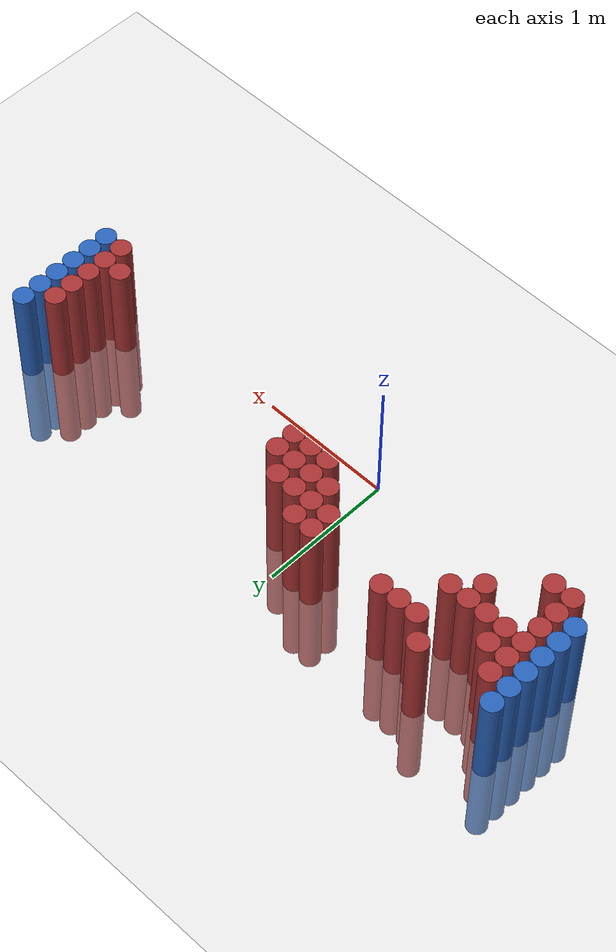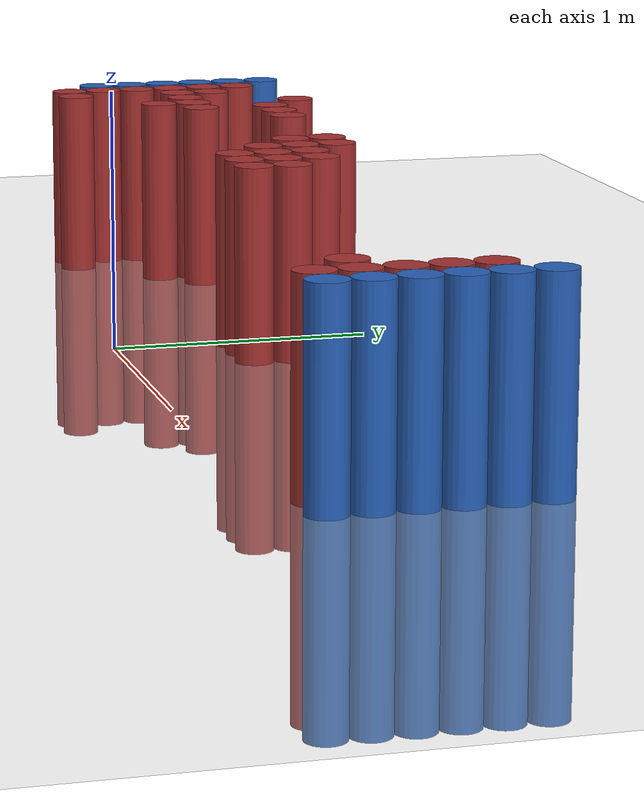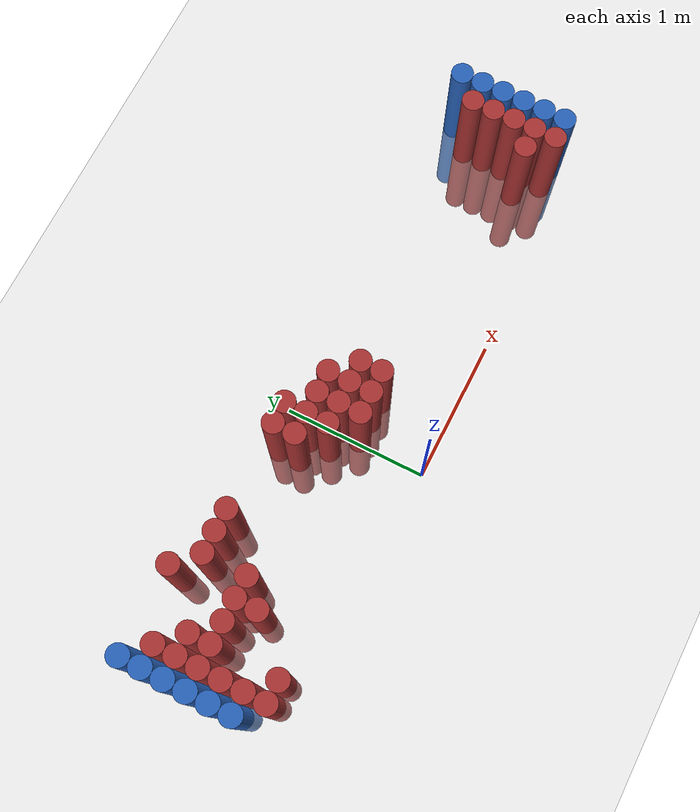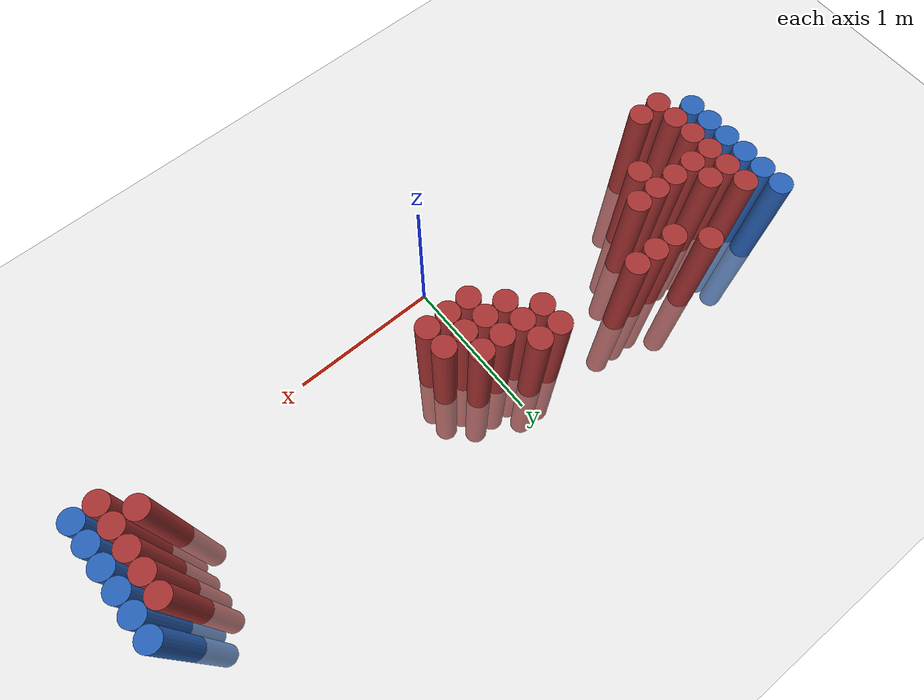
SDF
<sdf version="1.6">
 <world name="default">
  <model name="ground_plane">
   <static>1</static>
   <link name="link">
    <collision name="collision">
     <geometry><plane><normal>0 0 1</normal><size>100 100</size></plane></geometry>
     <surface><friction><ode><mu>100</mu><mu2>50</mu2></ode></friction></surface>
    </collision>
    <visual name="visual">
     <cast_shadows>0</cast_shadows>
     <geometry><plane><normal>0 0 1</normal><size>100 100</size></plane></geometry>
     <material>
      <script><uri>file://media/materials/scripts/gazebo.material</uri><name>Gazebo/Grey</name></script>
     </material>
    </visual>
   </link>
  </model>
  <model name="unit_cylinder_97">
   <static>1</static>
   <pose>-1.925000 0.325000 0.000000 0.000000 0.000000 0.000000</pose>
   <link name="link">
    <inertial>
     <mass>1</mass>
     <inertia><ixx>0.145833</ixx><ixy>0</ixy><ixz>0</ixz><iyy>0.145833</iyy><iyz>0</iyz><izz>0.125</izz></inertia>
    </inertial>
    <collision name="collision">
     <geometry><cylinder><radius>0.075000</radius><length>1.5</length></cylinder></geometry>
    </collision>
    <visual name="visual">
     <geometry><cylinder><radius>0.075000</radius><length>1.5</length></cylinder></geometry>
     <material>
      <ambient>0.152000 0.379000 0.720000 1</ambient>
      <diffuse>0.152000 0.379000 0.720000 1</diffuse>
     </material>
     <material>
      <script><name>Gazebo/Grey</name><uri>file://media/materials/scripts/gazebo.material</uri></script>
     </material>
    </visual>
   </link>
  </model>
  <model name="unit_cylinder_98">
   <static>1</static>
   <pose>-1.925000 0.475000 0.000000 0.000000 0.000000 0.000000</pose>
   <link name="link">
    <inertial>
     <mass>1</mass>
     <inertia><ixx>0.145833</ixx><ixy>0</ixy><ixz>0</ixz><iyy>0.145833</iyy><iyz>0</iyz><izz>0.125</izz></inertia>
    </inertial>
    <collision name="collision">
     <geometry><cylinder><radius>0.075000</radius><length>1.5</length></cylinder></geometry>
    </collision>
    <visual name="visual">
     <geometry><cylinder><radius>0.075000</radius><length>1.5</length></cylinder></geometry>
     <material>
      <ambient>0.152000 0.379000 0.720000 1</ambient>
      <diffuse>0.152000 0.379000 0.720000 1</diffuse>
     </material>
     <material>
      <script><name>Gazebo/Grey</name><uri>file://media/materials/scripts/gazebo.material</uri></script>
     </material>
    </visual>
   </link>
  </model>
  <model name="unit_cylinder_99">
   <static>1</static>
   <pose>-1.925000 0.625000 0.000000 0.000000 0.000000 0.000000</pose>
   <link name="link">
    <inertial>
     <mass>1</mass>
     <inertia><ixx>0.145833</ixx><ixy>0</ixy><ixz>0</ixz><iyy>0.145833</iyy><iyz>0</iyz><izz>0.125</izz></inertia>
    </inertial>
    <collision name="collision">
     <geometry><cylinder><radius>0.075000</radius><length>1.5</length></cylinder></geometry>
    </collision>
    <visual name="visual">
     <geometry><cylinder><radius>0.075000</radius><length>1.5</length></cylinder></geometry>
     <material>
      <ambient>0.152000 0.379000 0.720000 1</ambient>
      <diffuse>0.152000 0.379000 0.720000 1</diffuse>
     </material>
     <material>
      <script><name>Gazebo/Grey</name><uri>file://media/materials/scripts/gazebo.material</uri></script>
     </material>
    </visual>
   </link>
  </model>
  <model name="unit_cylinder_100">
   <static>1</static>
   <pose>-1.925000 0.775000 0.000000 0.000000 0.000000 0.000000</pose>
   <link name="link">
    <inertial>
     <mass>1</mass>
     <inertia><ixx>0.145833</ixx><ixy>0</ixy><ixz>0</ixz><iyy>0.145833</iyy><iyz>0</iyz><izz>0.125</izz></inertia>
    </inertial>
    <collision name="collision">
     <geometry><cylinder><radius>0.075000</radius><length>1.5</length></cylinder></geometry>
    </collision>
    <visual name="visual">
     <geometry><cylinder><radius>0.075000</radius><length>1.5</length></cylinder></geometry>
     <material>
      <ambient>0.152000 0.379000 0.720000 1</ambient>
      <diffuse>0.152000 0.379000 0.720000 1</diffuse>
     </material>
     <material>
      <script><name>Gazebo/Grey</name><uri>file://media/materials/scripts/gazebo.material</uri></script>
     </material>
    </visual>
   </link>
  </model>
  <model name="unit_cylinder_101">
   <static>1</static>
   <pose>-1.925000 0.925000 0.000000 0.000000 0.000000 0.000000</pose>
   <link name="link">
    <inertial>
     <mass>1</mass>
     <inertia><ixx>0.145833</ixx><ixy>0</ixy><ixz>0</ixz><iyy>0.145833</iyy><iyz>0</iyz><izz>0.125</izz></inertia>
    </inertial>
    <collision name="collision">
     <geometry><cylinder><radius>0.075000</radius><length>1.5</length></cylinder></geometry>
    </collision>
    <visual name="visual">
     <geometry><cylinder><radius>0.075000</radius><length>1.5</length></cylinder></geometry>
     <material>
      <ambient>0.152000 0.379000 0.720000 1</ambient>
      <diffuse>0.152000 0.379000 0.720000 1</diffuse>
     </material>
     <material>
      <script><name>Gazebo/Grey</name><uri>file://media/materials/scripts/gazebo.material</uri></script>
     </material>
    </visual>
   </link>
  </model>
  <model name="unit_cylinder_102">
   <static>1</static>
   <pose>-1.925000 1.075000 0.000000 0.000000 0.000000 0.000000</pose>
   <link name="link">
    <inertial>
     <mass>1</mass>
     <inertia><ixx>0.145833</ixx><ixy>0</ixy><ixz>0</ixz><iyy>0.145833</iyy><iyz>0</iyz><izz>0.125</izz></inertia>
    </inertial>
    <collision name="collision">
     <geometry><cylinder><radius>0.075000</radius><length>1.5</length></cylinder></geometry>
    </collision>
    <visual name="visual">
     <geometry><cylinder><radius>0.075000</radius><length>1.5</length></cylinder></geometry>
     <material>
      <ambient>0.152000 0.379000 0.720000 1</ambient>
      <diffuse>0.152000 0.379000 0.720000 1</diffuse>
     </material>
     <material>
      <script><name>Gazebo/Grey</name><uri>file://media/materials/scripts/gazebo.material</uri></script>
     </material>
    </visual>
   </link>
  </model>
  <model name="unit_cylinder_126">
   <static>1</static>
   <pose>-1.775000 0.175000 0.000000 0.000000 0.000000 0.000000</pose>
   <link name="link">
    <inertial>
     <mass>1</mass>
     <inertia><ixx>0.145833</ixx><ixy>0</ixy><ixz>0</ixz><iyy>0.145833</iyy><iyz>0</iyz><izz>0.125</izz></inertia>
    </inertial>
    <collision name="collision">
     <geometry><cylinder><radius>0.075000</radius><length>1.5</length></cylinder></geometry>
    </collision>
    <visual name="visual">
     <geometry><cylinder><radius>0.075000</radius><length>1.5</length></cylinder></geometry>
     <material>
      <ambient>0.648000 0.192000 0.192000 1</ambient>
      <diffuse>0.648000 0.192000 0.192000 1</diffuse>
     </material>
     <material>
      <script><name>Gazebo/Grey</name><uri>file://media/materials/scripts/gazebo.material</uri></script>
     </material>
    </visual>
   </link>
  </model>
  <model name="unit_cylinder_127">
   <static>1</static>
   <pose>-1.775000 0.325000 0.000000 0.000000 0.000000 0.000000</pose>
   <link name="link">
    <inertial>
     <mass>1</mass>
     <inertia><ixx>0.145833</ixx><ixy>0</ixy><ixz>0</ixz><iyy>0.145833</iyy><iyz>0</iyz><izz>0.125</izz></inertia>
    </inertial>
    <collision name="collision">
     <geometry><cylinder><radius>0.075000</radius><length>1.5</length></cylinder></geometry>
    </collision>
    <visual name="visual">
     <geometry><cylinder><radius>0.075000</radius><length>1.5</length></cylinder></geometry>
     <material>
      <ambient>0.648000 0.192000 0.192000 1</ambient>
      <diffuse>0.648000 0.192000 0.192000 1</diffuse>
     </material>
     <material>
      <script><name>Gazebo/Grey</name><uri>file://media/materials/scripts/gazebo.material</uri></script>
     </material>
    </visual>
   </link>
  </model>
  <model name="unit_cylinder_128">
   <static>1</static>
   <pose>-1.775000 0.475000 0.000000 0.000000 0.000000 0.000000</pose>
   <link name="link">
    <inertial>
     <mass>1</mass>
     <inertia><ixx>0.145833</ixx><ixy>0</ixy><ixz>0</ixz><iyy>0.145833</iyy><iyz>0</iyz><izz>0.125</izz></inertia>
    </inertial>
    <collision name="collision">
     <geometry><cylinder><radius>0.075000</radius><length>1.5</length></cylinder></geometry>
    </collision>
    <visual name="visual">
     <geometry><cylinder><radius>0.075000</radius><length>1.5</length></cylinder></geometry>
     <material>
      <ambient>0.648000 0.192000 0.192000 1</ambient>
      <diffuse>0.648000 0.192000 0.192000 1</diffuse>
     </material>
     <material>
      <script><name>Gazebo/Grey</name><uri>file://media/materials/scripts/gazebo.material</uri></script>
     </material>
    </visual>
   </link>
  </model>
  <model name="unit_cylinder_129">
   <static>1</static>
   <pose>-1.775000 0.625000 0.000000 0.000000 0.000000 0.000000</pose>
   <link name="link">
    <inertial>
     <mass>1</mass>
     <inertia><ixx>0.145833</ixx><ixy>0</ixy><ixz>0</ixz><iyy>0.145833</iyy><iyz>0</iyz><izz>0.125</izz></inertia>
    </inertial>
    <collision name="collision">
     <geometry><cylinder><radius>0.075000</radius><length>1.5</length></cylinder></geometry>
    </collision>
    <visual name="visual">
     <geometry><cylinder><radius>0.075000</radius><length>1.5</length></cylinder></geometry>
     <material>
      <ambient>0.648000 0.192000 0.192000 1</ambient>
      <diffuse>0.648000 0.192000 0.192000 1</diffuse>
     </material>
     <material>
      <script><name>Gazebo/Grey</name><uri>file://media/materials/scripts/gazebo.material</uri></script>
     </material>
    </visual>
   </link>
  </model>
  <model name="unit_cylinder_130">
   <static>1</static>
   <pose>-1.775000 0.775000 0.000000 0.000000 0.000000 0.000000</pose>
   <link name="link">
    <inertial>
     <mass>1</mass>
     <inertia><ixx>0.145833</ixx><ixy>0</ixy><ixz>0</ixz><iyy>0.145833</iyy><iyz>0</iyz><izz>0.125</izz></inertia>
    </inertial>
    <collision name="collision">
     <geometry><cylinder><radius>0.075000</radius><length>1.5</length></cylinder></geometry>
    </collision>
    <visual name="visual">
     <geometry><cylinder><radius>0.075000</radius><length>1.5</length></cylinder></geometry>
     <material>
      <ambient>0.648000 0.192000 0.192000 1</ambient>
      <diffuse>0.648000 0.192000 0.192000 1</diffuse>
     </material>
     <material>
      <script><name>Gazebo/Grey</name><uri>file://media/materials/scripts/gazebo.material</uri></script>
     </material>
    </visual>
   </link>
  </model>
  <model name="unit_cylinder_131">
   <static>1</static>
   <pose>-1.775000 0.925000 0.000000 0.000000 0.000000 0.000000</pose>
   <link name="link">
    <inertial>
     <mass>1</mass>
     <inertia><ixx>0.145833</ixx><ixy>0</ixy><ixz>0</ixz><iyy>0.145833</iyy><iyz>0</iyz><izz>0.125</izz></inertia>
    </inertial>
    <collision name="collision">
     <geometry><cylinder><radius>0.075000</radius><length>1.5</length></cylinder></geometry>
    </collision>
    <visual name="visual">
     <geometry><cylinder><radius>0.075000</radius><length>1.5</length></cylinder></geometry>
     <material>
      <ambient>0.648000 0.192000 0.192000 1</ambient>
      <diffuse>0.648000 0.192000 0.192000 1</diffuse>
     </material>
     <material>
      <script><name>Gazebo/Grey</name><uri>file://media/materials/scripts/gazebo.material</uri></script>
     </material>
    </visual>
   </link>
  </model>
  <model name="unit_cylinder_143">
   <static>1</static>
   <pose>-1.625000 0.175000 0.000000 0.000000 0.000000 0.000000</pose>
   <link name="link">
    <inertial>
     <mass>1</mass>
     <inertia><ixx>0.145833</ixx><ixy>0</ixy><ixz>0</ixz><iyy>0.145833</iyy><iyz>0</iyz><izz>0.125</izz></inertia>
    </inertial>
    <collision name="collision">
     <geometry><cylinder><radius>0.075000</radius><length>1.5</length></cylinder></geometry>
    </collision>
    <visual name="visual">
     <geometry><cylinder><radius>0.075000</radius><length>1.5</length></cylinder></geometry>
     <material>
      <ambient>0.648000 0.192000 0.192000 1</ambient>
      <diffuse>0.648000 0.192000 0.192000 1</diffuse>
     </material>
     <material>
      <script><name>Gazebo/Grey</name><uri>file://media/materials/scripts/gazebo.material</uri></script>
     </material>
    </visual>
   </link>
  </model>
  <model name="unit_cylinder_144">
   <static>1</static>
   <pose>-1.625000 0.625000 0.000000 0.000000 0.000000 0.000000</pose>
   <link name="link">
    <inertial>
     <mass>1</mass>
     <inertia><ixx>0.145833</ixx><ixy>0</ixy><ixz>0</ixz><iyy>0.145833</iyy><iyz>0</iyz><izz>0.125</izz></inertia>
    </inertial>
    <collision name="collision">
     <geometry><cylinder><radius>0.075000</radius><length>1.5</length></cylinder></geometry>
    </collision>
    <visual name="visual">
     <geometry><cylinder><radius>0.075000</radius><length>1.5</length></cylinder></geometry>
     <material>
      <ambient>0.648000 0.192000 0.192000 1</ambient>
      <diffuse>0.648000 0.192000 0.192000 1</diffuse>
     </material>
     <material>
      <script><name>Gazebo/Grey</name><uri>file://media/materials/scripts/gazebo.material</uri></script>
     </material>
    </visual>
   </link>
  </model>
  <model name="unit_cylinder_145">
   <static>1</static>
   <pose>-1.625000 0.775000 0.000000 0.000000 0.000000 0.000000</pose>
   <link name="link">
    <inertial>
     <mass>1</mass>
     <inertia><ixx>0.145833</ixx><ixy>0</ixy><ixz>0</ixz><iyy>0.145833</iyy><iyz>0</iyz><izz>0.125</izz></inertia>
    </inertial>
    <collision name="collision">
     <geometry><cylinder><radius>0.075000</radius><length>1.5</length></cylinder></geometry>
    </collision>
    <visual name="visual">
     <geometry><cylinder><radius>0.075000</radius><length>1.5</length></cylinder></geometry>
     <material>
      <ambient>0.648000 0.192000 0.192000 1</ambient>
      <diffuse>0.648000 0.192000 0.192000 1</diffuse>
     </material>
     <material>
      <script><name>Gazebo/Grey</name><uri>file://media/materials/scripts/gazebo.material</uri></script>
     </material>
    </visual>
   </link>
  </model>
  <model name="unit_cylinder_154">
   <static>1</static>
   <pose>-1.475000 0.625000 0.000000 0.000000 0.000000 0.000000</pose>
   <link name="link">
    <inertial>
     <mass>1</mass>
     <inertia><ixx>0.145833</ixx><ixy>0</ixy><ixz>0</ixz><iyy>0.145833</iyy><iyz>0</iyz><izz>0.125</izz></inertia>
    </inertial>
    <collision name="collision">
     <geometry><cylinder><radius>0.075000</radius><length>1.5</length></cylinder></geometry>
    </collision>
    <visual name="visual">
     <geometry><cylinder><radius>0.075000</radius><length>1.5</length></cylinder></geometry>
     <material>
      <ambient>0.648000 0.192000 0.192000 1</ambient>
      <diffuse>0.648000 0.192000 0.192000 1</diffuse>
     </material>
     <material>
      <script><name>Gazebo/Grey</name><uri>file://media/materials/scripts/gazebo.material</uri></script>
     </material>
    </visual>
   </link>
  </model>
  <model name="unit_cylinder_162">
   <static>1</static>
   <pose>-1.325000 0.475000 0.000000 0.000000 0.000000 0.000000</pose>
   <link name="link">
    <inertial>
     <mass>1</mass>
     <inertia><ixx>0.145833</ixx><ixy>0</ixy><ixz>0</ixz><iyy>0.145833</iyy><iyz>0</iyz><izz>0.125</izz></inertia>
    </inertial>
    <collision name="collision">
     <geometry><cylinder><radius>0.075000</radius><length>1.5</length></cylinder></geometry>
    </collision>
    <visual name="visual">
     <geometry><cylinder><radius>0.075000</radius><length>1.5</length></cylinder></geometry>
     <material>
      <ambient>0.648000 0.192000 0.192000 1</ambient>
      <diffuse>0.648000 0.192000 0.192000 1</diffuse>
     </material>
     <material>
      <script><name>Gazebo/Grey</name><uri>file://media/materials/scripts/gazebo.material</uri></script>
     </material>
    </visual>
   </link>
  </model>
  <model name="unit_cylinder_163">
   <static>1</static>
   <pose>-1.325000 0.625000 0.000000 0.000000 0.000000 0.000000</pose>
   <link name="link">
    <inertial>
     <mass>1</mass>
     <inertia><ixx>0.145833</ixx><ixy>0</ixy><ixz>0</ixz><iyy>0.145833</iyy><iyz>0</iyz><izz>0.125</izz></inertia>
    </inertial>
    <collision name="collision">
     <geometry><cylinder><radius>0.075000</radius><length>1.5</length></cylinder></geometry>
    </collision>
    <visual name="visual">
     <geometry><cylinder><radius>0.075000</radius><length>1.5</length></cylinder></geometry>
     <material>
      <ambient>0.648000 0.192000 0.192000 1</ambient>
      <diffuse>0.648000 0.192000 0.192000 1</diffuse>
     </material>
     <material>
      <script><name>Gazebo/Grey</name><uri>file://media/materials/scripts/gazebo.material</uri></script>
     </material>
    </visual>
   </link>
  </model>
  <model name="unit_cylinder_164">
   <static>1</static>
   <pose>-1.325000 1.075000 0.000000 0.000000 0.000000 0.000000</pose>
   <link name="link">
    <inertial>
     <mass>1</mass>
     <inertia><ixx>0.145833</ixx><ixy>0</ixy><ixz>0</ixz><iyy>0.145833</iyy><iyz>0</iyz><izz>0.125</izz></inertia>
    </inertial>
    <collision name="collision">
     <geometry><cylinder><radius>0.075000</radius><length>1.5</length></cylinder></geometry>
    </collision>
    <visual name="visual">
     <geometry><cylinder><radius>0.075000</radius><length>1.5</length></cylinder></geometry>
     <material>
      <ambient>0.648000 0.192000 0.192000 1</ambient>
      <diffuse>0.648000 0.192000 0.192000 1</diffuse>
     </material>
     <material>
      <script><name>Gazebo/Grey</name><uri>file://media/materials/scripts/gazebo.material</uri></script>
     </material>
    </visual>
   </link>
  </model>
  <model name="unit_cylinder_169">
   <static>1</static>
   <pose>-1.175000 0.625000 0.000000 0.000000 0.000000 0.000000</pose>
   <link name="link">
    <inertial>
     <mass>1</mass>
     <inertia><ixx>0.145833</ixx><ixy>0</ixy><ixz>0</ixz><iyy>0.145833</iyy><iyz>0</iyz><izz>0.125</izz></inertia>
    </inertial>
    <collision name="collision">
     <geometry><cylinder><radius>0.075000</radius><length>1.5</length></cylinder></geometry>
    </collision>
    <visual name="visual">
     <geometry><cylinder><radius>0.075000</radius><length>1.5</length></cylinder></geometry>
     <material>
      <ambient>0.648000 0.192000 0.192000 1</ambient>
      <diffuse>0.648000 0.192000 0.192000 1</diffuse>
     </material>
     <material>
      <script><name>Gazebo/Grey</name><uri>file://media/materials/scripts/gazebo.material</uri></script>
     </material>
    </visual>
   </link>
  </model>
  <model name="unit_cylinder_170">
   <static>1</static>
   <pose>-1.175000 0.925000 0.000000 0.000000 0.000000 0.000000</pose>
   <link name="link">
    <inertial>
     <mass>1</mass>
     <inertia><ixx>0.145833</ixx><ixy>0</ixy><ixz>0</ixz><iyy>0.145833</iyy><iyz>0</iyz><izz>0.125</izz></inertia>
    </inertial>
    <collision name="collision">
     <geometry><cylinder><radius>0.075000</radius><length>1.5</length></cylinder></geometry>
    </collision>
    <visual name="visual">
     <geometry><cylinder><radius>0.075000</radius><length>1.5</length></cylinder></geometry>
     <material>
      <ambient>0.648000 0.192000 0.192000 1</ambient>
      <diffuse>0.648000 0.192000 0.192000 1</diffuse>
     </material>
     <material>
      <script><name>Gazebo/Grey</name><uri>file://media/materials/scripts/gazebo.material</uri></script>
     </material>
    </visual>
   </link>
  </model>
  <model name="unit_cylinder_178">
   <static>1</static>
   <pose>-1.025000 0.925000 0.000000 0.000000 0.000000 0.000000</pose>
   <link name="link">
    <inertial>
     <mass>1</mass>
     <inertia><ixx>0.145833</ixx><ixy>0</ixy><ixz>0</ixz><iyy>0.145833</iyy><iyz>0</iyz><izz>0.125</izz></inertia>
    </inertial>
    <collision name="collision">
     <geometry><cylinder><radius>0.075000</radius><length>1.5</length></cylinder></geometry>
    </collision>
    <visual name="visual">
     <geometry><cylinder><radius>0.075000</radius><length>1.5</length></cylinder></geometry>
     <material>
      <ambient>0.648000 0.192000 0.192000 1</ambient>
      <diffuse>0.648000 0.192000 0.192000 1</diffuse>
     </material>
     <material>
      <script><name>Gazebo/Grey</name><uri>file://media/materials/scripts/gazebo.material</uri></script>
     </material>
    </visual>
   </link>
  </model>
  <model name="unit_cylinder_185">
   <static>1</static>
   <pose>-0.875000 0.925000 0.000000 0.000000 0.000000 0.000000</pose>
   <link name="link">
    <inertial>
     <mass>1</mass>
     <inertia><ixx>0.145833</ixx><ixy>0</ixy><ixz>0</ixz><iyy>0.145833</iyy><iyz>0</iyz><izz>0.125</izz></inertia>
    </inertial>
    <collision name="collision">
     <geometry><cylinder><radius>0.075000</radius><length>1.5</length></cylinder></geometry>
    </collision>
    <visual name="visual">
     <geometry><cylinder><radius>0.075000</radius><length>1.5</length></cylinder></geometry>
     <material>
      <ambient>0.648000 0.192000 0.192000 1</ambient>
      <diffuse>0.648000 0.192000 0.192000 1</diffuse>
     </material>
     <material>
      <script><name>Gazebo/Grey</name><uri>file://media/materials/scripts/gazebo.material</uri></script>
     </material>
    </visual>
   </link>
  </model>
  <model name="unit_cylinder_198">
   <static>1</static>
   <pose>-0.275000 0.775000 0.000000 0.000000 0.000000 0.000000</pose>
   <link name="link">
    <inertial>
     <mass>1</mass>
     <inertia><ixx>0.145833</ixx><ixy>0</ixy><ixz>0</ixz><iyy>0.145833</iyy><iyz>0</iyz><izz>0.125</izz></inertia>
    </inertial>
    <collision name="collision">
     <geometry><cylinder><radius>0.075000</radius><length>1.5</length></cylinder></geometry>
    </collision>
    <visual name="visual">
     <geometry><cylinder><radius>0.075000</radius><length>1.5</length></cylinder></geometry>
     <material>
      <ambient>0.648000 0.192000 0.192000 1</ambient>
      <diffuse>0.648000 0.192000 0.192000 1</diffuse>
     </material>
     <material>
      <script><name>Gazebo/Grey</name><uri>file://media/materials/scripts/gazebo.material</uri></script>
     </material>
    </visual>
   </link>
  </model>
  <model name="unit_cylinder_199">
   <static>1</static>
   <pose>-0.275000 0.925000 0.000000 0.000000 0.000000 0.000000</pose>
   <link name="link">
    <inertial>
     <mass>1</mass>
     <inertia><ixx>0.145833</ixx><ixy>0</ixy><ixz>0</ixz><iyy>0.145833</iyy><iyz>0</iyz><izz>0.125</izz></inertia>
    </inertial>
    <collision name="collision">
     <geometry><cylinder><radius>0.075000</radius><length>1.5</length></cylinder></geometry>
    </collision>
    <visual name="visual">
     <geometry><cylinder><radius>0.075000</radius><length>1.5</length></cylinder></geometry>
     <material>
      <ambient>0.648000 0.192000 0.192000 1</ambient>
      <diffuse>0.648000 0.192000 0.192000 1</diffuse>
     </material>
     <material>
      <script><name>Gazebo/Grey</name><uri>file://media/materials/scripts/gazebo.material</uri></script>
     </material>
    </visual>
   </link>
  </model>
  <model name="unit_cylinder_206">
   <static>1</static>
   <pose>-0.125000 0.625000 0.000000 0.000000 0.000000 0.000000</pose>
   <link name="link">
    <inertial>
     <mass>1</mass>
     <inertia><ixx>0.145833</ixx><ixy>0</ixy><ixz>0</ixz><iyy>0.145833</iyy><iyz>0</iyz><izz>0.125</izz></inertia>
    </inertial>
    <collision name="collision">
     <geometry><cylinder><radius>0.075000</radius><length>1.5</length></cylinder></geometry>
    </collision>
    <visual name="visual">
     <geometry><cylinder><radius>0.075000</radius><length>1.5</length></cylinder></geometry>
     <material>
      <ambient>0.648000 0.192000 0.192000 1</ambient>
      <diffuse>0.648000 0.192000 0.192000 1</diffuse>
     </material>
     <material>
      <script><name>Gazebo/Grey</name><uri>file://media/materials/scripts/gazebo.material</uri></script>
     </material>
    </visual>
   </link>
  </model>
  <model name="unit_cylinder_207">
   <static>1</static>
   <pose>-0.125000 0.775000 0.000000 0.000000 0.000000 0.000000</pose>
   <link name="link">
    <inertial>
     <mass>1</mass>
     <inertia><ixx>0.145833</ixx><ixy>0</ixy><ixz>0</ixz><iyy>0.145833</iyy><iyz>0</iyz><izz>0.125</izz></inertia>
    </inertial>
    <collision name="collision">
     <geometry><cylinder><radius>0.075000</radius><length>1.5</length></cylinder></geometry>
    </collision>
    <visual name="visual">
     <geometry><cylinder><radius>0.075000</radius><length>1.5</length></cylinder></geometry>
     <material>
      <ambient>0.648000 0.192000 0.192000 1</ambient>
      <diffuse>0.648000 0.192000 0.192000 1</diffuse>
     </material>
     <material>
      <script><name>Gazebo/Grey</name><uri>file://media/materials/scripts/gazebo.material</uri></script>
     </material>
    </visual>
   </link>
  </model>
  <model name="unit_cylinder_208">
   <static>1</static>
   <pose>-0.125000 0.925000 0.000000 0.000000 0.000000 0.000000</pose>
   <link name="link">
    <inertial>
     <mass>1</mass>
     <inertia><ixx>0.145833</ixx><ixy>0</ixy><ixz>0</ixz><iyy>0.145833</iyy><iyz>0</iyz><izz>0.125</izz></inertia>
    </inertial>
    <collision name="collision">
     <geometry><cylinder><radius>0.075000</radius><length>1.5</length></cylinder></geometry>
    </collision>
    <visual name="visual">
     <geometry><cylinder><radius>0.075000</radius><length>1.5</length></cylinder></geometry>
     <material>
      <ambient>0.648000 0.192000 0.192000 1</ambient>
      <diffuse>0.648000 0.192000 0.192000 1</diffuse>
     </material>
     <material>
      <script><name>Gazebo/Grey</name><uri>file://media/materials/scripts/gazebo.material</uri></script>
     </material>
    </visual>
   </link>
  </model>
  <model name="unit_cylinder_214">
   <static>1</static>
   <pose>0.025000 0.475000 0.000000 0.000000 0.000000 0.000000</pose>
   <link name="link">
    <inertial>
     <mass>1</mass>
     <inertia><ixx>0.145833</ixx><ixy>0</ixy><ixz>0</ixz><iyy>0.145833</iyy><iyz>0</iyz><izz>0.125</izz></inertia>
    </inertial>
    <collision name="collision">
     <geometry><cylinder><radius>0.075000</radius><length>1.5</length></cylinder></geometry>
    </collision>
    <visual name="visual">
     <geometry><cylinder><radius>0.075000</radius><length>1.5</length></cylinder></geometry>
     <material>
      <ambient>0.648000 0.192000 0.192000 1</ambient>
      <diffuse>0.648000 0.192000 0.192000 1</diffuse>
     </material>
     <material>
      <script><name>Gazebo/Grey</name><uri>file://media/materials/scripts/gazebo.material</uri></script>
     </material>
    </visual>
   </link>
  </model>
  <model name="unit_cylinder_215">
   <static>1</static>
   <pose>0.025000 0.625000 0.000000 0.000000 0.000000 0.000000</pose>
   <link name="link">
    <inertial>
     <mass>1</mass>
     <inertia><ixx>0.145833</ixx><ixy>0</ixy><ixz>0</ixz><iyy>0.145833</iyy><iyz>0</iyz><izz>0.125</izz></inertia>
    </inertial>
    <collision name="collision">
     <geometry><cylinder><radius>0.075000</radius><length>1.5</length></cylinder></geometry>
    </collision>
    <visual name="visual">
     <geometry><cylinder><radius>0.075000</radius><length>1.5</length></cylinder></geometry>
     <material>
      <ambient>0.648000 0.192000 0.192000 1</ambient>
      <diffuse>0.648000 0.192000 0.192000 1</diffuse>
     </material>
     <material>
      <script><name>Gazebo/Grey</name><uri>file://media/materials/scripts/gazebo.material</uri></script>
     </material>
    </visual>
   </link>
  </model>
  <model name="unit_cylinder_216">
   <static>1</static>
   <pose>0.025000 0.775000 0.000000 0.000000 0.000000 0.000000</pose>
   <link name="link">
    <inertial>
     <mass>1</mass>
     <inertia><ixx>0.145833</ixx><ixy>0</ixy><ixz>0</ixz><iyy>0.145833</iyy><iyz>0</iyz><izz>0.125</izz></inertia>
    </inertial>
    <collision name="collision">
     <geometry><cylinder><radius>0.075000</radius><length>1.5</length></cylinder></geometry>
    </collision>
    <visual name="visual">
     <geometry><cylinder><radius>0.075000</radius><length>1.5</length></cylinder></geometry>
     <material>
      <ambient>0.648000 0.192000 0.192000 1</ambient>
      <diffuse>0.648000 0.192000 0.192000 1</diffuse>
     </material>
     <material>
      <script><name>Gazebo/Grey</name><uri>file://media/materials/scripts/gazebo.material</uri></script>
     </material>
    </visual>
   </link>
  </model>
  <model name="unit_cylinder_218">
   <static>1</static>
   <pose>0.175000 0.475000 0.000000 0.000000 0.000000 0.000000</pose>
   <link name="link">
    <inertial>
     <mass>1</mass>
     <inertia><ixx>0.145833</ixx><ixy>0</ixy><ixz>0</ixz><iyy>0.145833</iyy><iyz>0</iyz><izz>0.125</izz></inertia>
    </inertial>
    <collision name="collision">
     <geometry><cylinder><radius>0.075000</radius><length>1.5</length></cylinder></geometry>
    </collision>
    <visual name="visual">
     <geometry><cylinder><radius>0.075000</radius><length>1.5</length></cylinder></geometry>
     <material>
      <ambient>0.648000 0.192000 0.192000 1</ambient>
      <diffuse>0.648000 0.192000 0.192000 1</diffuse>
     </material>
     <material>
      <script><name>Gazebo/Grey</name><uri>file://media/materials/scripts/gazebo.material</uri></script>
     </material>
    </visual>
   </link>
  </model>
  <model name="unit_cylinder_219">
   <static>1</static>
   <pose>0.175000 0.625000 0.000000 0.000000 0.000000 0.000000</pose>
   <link name="link">
    <inertial>
     <mass>1</mass>
     <inertia><ixx>0.145833</ixx><ixy>0</ixy><ixz>0</ixz><iyy>0.145833</iyy><iyz>0</iyz><izz>0.125</izz></inertia>
    </inertial>
    <collision name="collision">
     <geometry><cylinder><radius>0.075000</radius><length>1.5</length></cylinder></geometry>
    </collision>
    <visual name="visual">
     <geometry><cylinder><radius>0.075000</radius><length>1.5</length></cylinder></geometry>
     <material>
      <ambient>0.648000 0.192000 0.192000 1</ambient>
      <diffuse>0.648000 0.192000 0.192000 1</diffuse>
     </material>
     <material>
      <script><name>Gazebo/Grey</name><uri>file://media/materials/scripts/gazebo.material</uri></script>
     </material>
    </visual>
   </link>
  </model>
  <model name="unit_cylinder_220">
   <static>1</static>
   <pose>0.175000 0.775000 0.000000 0.000000 0.000000 0.000000</pose>
   <link name="link">
    <inertial>
     <mass>1</mass>
     <inertia><ixx>0.145833</ixx><ixy>0</ixy><ixz>0</ixz><iyy>0.145833</iyy><iyz>0</iyz><izz>0.125</izz></inertia>
    </inertial>
    <collision name="collision">
     <geometry><cylinder><radius>0.075000</radius><length>1.5</length></cylinder></geometry>
    </collision>
    <visual name="visual">
     <geometry><cylinder><radius>0.075000</radius><length>1.5</length></cylinder></geometry>
     <material>
      <ambient>0.648000 0.192000 0.192000 1</ambient>
      <diffuse>0.648000 0.192000 0.192000 1</diffuse>
     </material>
     <material>
      <script><name>Gazebo/Grey</name><uri>file://media/materials/scripts/gazebo.material</uri></script>
     </material>
    </visual>
   </link>
  </model>
  <model name="unit_cylinder_221">
   <static>1</static>
   <pose>0.325000 0.475000 0.000000 0.000000 0.000000 0.000000</pose>
   <link name="link">
    <inertial>
     <mass>1</mass>
     <inertia><ixx>0.145833</ixx><ixy>0</ixy><ixz>0</ixz><iyy>0.145833</iyy><iyz>0</iyz><izz>0.125</izz></inertia>
    </inertial>
    <collision name="collision">
     <geometry><cylinder><radius>0.075000</radius><length>1.5</length></cylinder></geometry>
    </collision>
    <visual name="visual">
     <geometry><cylinder><radius>0.075000</radius><length>1.5</length></cylinder></geometry>
     <material>
      <ambient>0.648000 0.192000 0.192000 1</ambient>
      <diffuse>0.648000 0.192000 0.192000 1</diffuse>
     </material>
     <material>
      <script><name>Gazebo/Grey</name><uri>file://media/materials/scripts/gazebo.material</uri></script>
     </material>
    </visual>
   </link>
  </model>
  <model name="unit_cylinder_222">
   <static>1</static>
   <pose>0.325000 0.625000 0.000000 0.000000 0.000000 0.000000</pose>
   <link name="link">
    <inertial>
     <mass>1</mass>
     <inertia><ixx>0.145833</ixx><ixy>0</ixy><ixz>0</ixz><iyy>0.145833</iyy><iyz>0</iyz><izz>0.125</izz></inertia>
    </inertial>
    <collision name="collision">
     <geometry><cylinder><radius>0.075000</radius><length>1.5</length></cylinder></geometry>
    </collision>
    <visual name="visual">
     <geometry><cylinder><radius>0.075000</radius><length>1.5</length></cylinder></geometry>
     <material>
      <ambient>0.648000 0.192000 0.192000 1</ambient>
      <diffuse>0.648000 0.192000 0.192000 1</diffuse>
     </material>
     <material>
      <script><name>Gazebo/Grey</name><uri>file://media/materials/scripts/gazebo.material</uri></script>
     </material>
    </visual>
   </link>
  </model>
  <model name="unit_cylinder_236">
   <static>1</static>
   <pose>2.125000 0.325000 0.000000 0.000000 0.000000 0.000000</pose>
   <link name="link">
    <inertial>
     <mass>1</mass>
     <inertia><ixx>0.145833</ixx><ixy>0</ixy><ixz>0</ixz><iyy>0.145833</iyy><iyz>0</iyz><izz>0.125</izz></inertia>
    </inertial>
    <collision name="collision">
     <geometry><cylinder><radius>0.075000</radius><length>1.5</length></cylinder></geometry>
    </collision>
    <visual name="visual">
     <geometry><cylinder><radius>0.075000</radius><length>1.5</length></cylinder></geometry>
     <material>
      <ambient>0.648000 0.192000 0.192000 1</ambient>
      <diffuse>0.648000 0.192000 0.192000 1</diffuse>
     </material>
     <material>
      <script><name>Gazebo/Grey</name><uri>file://media/materials/scripts/gazebo.material</uri></script>
     </material>
    </visual>
   </link>
  </model>
  <model name="unit_cylinder_242">
   <static>1</static>
   <pose>2.275000 0.175000 0.000000 0.000000 0.000000 0.000000</pose>
   <link name="link">
    <inertial>
     <mass>1</mass>
     <inertia><ixx>0.145833</ixx><ixy>0</ixy><ixz>0</ixz><iyy>0.145833</iyy><iyz>0</iyz><izz>0.125</izz></inertia>
    </inertial>
    <collision name="collision">
     <geometry><cylinder><radius>0.075000</radius><length>1.5</length></cylinder></geometry>
    </collision>
    <visual name="visual">
     <geometry><cylinder><radius>0.075000</radius><length>1.5</length></cylinder></geometry>
     <material>
      <ambient>0.648000 0.192000 0.192000 1</ambient>
      <diffuse>0.648000 0.192000 0.192000 1</diffuse>
     </material>
     <material>
      <script><name>Gazebo/Grey</name><uri>file://media/materials/scripts/gazebo.material</uri></script>
     </material>
    </visual>
   </link>
  </model>
  <model name="unit_cylinder_243">
   <static>1</static>
   <pose>2.275000 0.325000 0.000000 0.000000 0.000000 0.000000</pose>
   <link name="link">
    <inertial>
     <mass>1</mass>
     <inertia><ixx>0.145833</ixx><ixy>0</ixy><ixz>0</ixz><iyy>0.145833</iyy><iyz>0</iyz><izz>0.125</izz></inertia>
    </inertial>
    <collision name="collision">
     <geometry><cylinder><radius>0.075000</radius><length>1.5</length></cylinder></geometry>
    </collision>
    <visual name="visual">
     <geometry><cylinder><radius>0.075000</radius><length>1.5</length></cylinder></geometry>
     <material>
      <ambient>0.648000 0.192000 0.192000 1</ambient>
      <diffuse>0.648000 0.192000 0.192000 1</diffuse>
     </material>
     <material>
      <script><name>Gazebo/Grey</name><uri>file://media/materials/scripts/gazebo.material</uri></script>
     </material>
    </visual>
   </link>
  </model>
  <model name="unit_cylinder_244">
   <static>1</static>
   <pose>2.275000 0.475000 0.000000 0.000000 0.000000 0.000000</pose>
   <link name="link">
    <inertial>
     <mass>1</mass>
     <inertia><ixx>0.145833</ixx><ixy>0</ixy><ixz>0</ixz><iyy>0.145833</iyy><iyz>0</iyz><izz>0.125</izz></inertia>
    </inertial>
    <collision name="collision">
     <geometry><cylinder><radius>0.075000</radius><length>1.5</length></cylinder></geometry>
    </collision>
    <visual name="visual">
     <geometry><cylinder><radius>0.075000</radius><length>1.5</length></cylinder></geometry>
     <material>
      <ambient>0.648000 0.192000 0.192000 1</ambient>
      <diffuse>0.648000 0.192000 0.192000 1</diffuse>
     </material>
     <material>
      <script><name>Gazebo/Grey</name><uri>file://media/materials/scripts/gazebo.material</uri></script>
     </material>
    </visual>
   </link>
  </model>
  <model name="unit_cylinder_245">
   <static>1</static>
   <pose>2.275000 0.625000 0.000000 0.000000 0.000000 0.000000</pose>
   <link name="link">
    <inertial>
     <mass>1</mass>
     <inertia><ixx>0.145833</ixx><ixy>0</ixy><ixz>0</ixz><iyy>0.145833</iyy><iyz>0</iyz><izz>0.125</izz></inertia>
    </inertial>
    <collision name="collision">
     <geometry><cylinder><radius>0.075000</radius><length>1.5</length></cylinder></geometry>
    </collision>
    <visual name="visual">
     <geometry><cylinder><radius>0.075000</radius><length>1.5</length></cylinder></geometry>
     <material>
      <ambient>0.648000 0.192000 0.192000 1</ambient>
      <diffuse>0.648000 0.192000 0.192000 1</diffuse>
     </material>
     <material>
      <script><name>Gazebo/Grey</name><uri>file://media/materials/scripts/gazebo.material</uri></script>
     </material>
    </visual>
   </link>
  </model>
  <model name="unit_cylinder_246">
   <static>1</static>
   <pose>2.275000 0.775000 0.000000 0.000000 0.000000 0.000000</pose>
   <link name="link">
    <inertial>
     <mass>1</mass>
     <inertia><ixx>0.145833</ixx><ixy>0</ixy><ixz>0</ixz><iyy>0.145833</iyy><iyz>0</iyz><izz>0.125</izz></inertia>
    </inertial>
    <collision name="collision">
     <geometry><cylinder><radius>0.075000</radius><length>1.5</length></cylinder></geometry>
    </collision>
    <visual name="visual">
     <geometry><cylinder><radius>0.075000</radius><length>1.5</length></cylinder></geometry>
     <material>
      <ambient>0.648000 0.192000 0.192000 1</ambient>
      <diffuse>0.648000 0.192000 0.192000 1</diffuse>
     </material>
     <material>
      <script><name>Gazebo/Grey</name><uri>file://media/materials/scripts/gazebo.material</uri></script>
     </material>
    </visual>
   </link>
  </model>
  <model name="unit_cylinder_260">
   <static>1</static>
   <pose>2.425000 0.175000 0.000000 0.000000 0.000000 0.000000</pose>
   <link name="link">
    <inertial>
     <mass>1</mass>
     <inertia><ixx>0.145833</ixx><ixy>0</ixy><ixz>0</ixz><iyy>0.145833</iyy><iyz>0</iyz><izz>0.125</izz></inertia>
    </inertial>
    <collision name="collision">
     <geometry><cylinder><radius>0.075000</radius><length>1.5</length></cylinder></geometry>
    </collision>
    <visual name="visual">
     <geometry><cylinder><radius>0.075000</radius><length>1.5</length></cylinder></geometry>
     <material>
      <ambient>0.152000 0.379000 0.720000 1</ambient>
      <diffuse>0.152000 0.379000 0.720000 1</diffuse>
     </material>
     <material>
      <script><name>Gazebo/Grey</name><uri>file://media/materials/scripts/gazebo.material</uri></script>
     </material>
    </visual>
   </link>
  </model>
  <model name="unit_cylinder_261">
   <static>1</static>
   <pose>2.425000 0.325000 0.000000 0.000000 0.000000 0.000000</pose>
   <link name="link">
    <inertial>
     <mass>1</mass>
     <inertia><ixx>0.145833</ixx><ixy>0</ixy><ixz>0</ixz><iyy>0.145833</iyy><iyz>0</iyz><izz>0.125</izz></inertia>
    </inertial>
    <collision name="collision">
     <geometry><cylinder><radius>0.075000</radius><length>1.5</length></cylinder></geometry>
    </collision>
    <visual name="visual">
     <geometry><cylinder><radius>0.075000</radius><length>1.5</length></cylinder></geometry>
     <material>
      <ambient>0.152000 0.379000 0.720000 1</ambient>
      <diffuse>0.152000 0.379000 0.720000 1</diffuse>
     </material>
     <material>
      <script><name>Gazebo/Grey</name><uri>file://media/materials/scripts/gazebo.material</uri></script>
     </material>
    </visual>
   </link>
  </model>
  <model name="unit_cylinder_262">
   <static>1</static>
   <pose>2.425000 0.475000 0.000000 0.000000 0.000000 0.000000</pose>
   <link name="link">
    <inertial>
     <mass>1</mass>
     <inertia><ixx>0.145833</ixx><ixy>0</ixy><ixz>0</ixz><iyy>0.145833</iyy><iyz>0</iyz><izz>0.125</izz></inertia>
    </inertial>
    <collision name="collision">
     <geometry><cylinder><radius>0.075000</radius><length>1.5</length></cylinder></geometry>
    </collision>
    <visual name="visual">
     <geometry><cylinder><radius>0.075000</radius><length>1.5</length></cylinder></geometry>
     <material>
      <ambient>0.152000 0.379000 0.720000 1</ambient>
      <diffuse>0.152000 0.379000 0.720000 1</diffuse>
     </material>
     <material>
      <script><name>Gazebo/Grey</name><uri>file://media/materials/scripts/gazebo.material</uri></script>
     </material>
    </visual>
   </link>
  </model>
  <model name="unit_cylinder_263">
   <static>1</static>
   <pose>2.425000 0.625000 0.000000 0.000000 0.000000 0.000000</pose>
   <link name="link">
    <inertial>
     <mass>1</mass>
     <inertia><ixx>0.145833</ixx><ixy>0</ixy><ixz>0</ixz><iyy>0.145833</iyy><iyz>0</iyz><izz>0.125</izz></inertia>
    </inertial>
    <collision name="collision">
     <geometry><cylinder><radius>0.075000</radius><length>1.5</length></cylinder></geometry>
    </collision>
    <visual name="visual">
     <geometry><cylinder><radius>0.075000</radius><length>1.5</length></cylinder></geometry>
     <material>
      <ambient>0.152000 0.379000 0.720000 1</ambient>
      <diffuse>0.152000 0.379000 0.720000 1</diffuse>
     </material>
     <material>
      <script><name>Gazebo/Grey</name><uri>file://media/materials/scripts/gazebo.material</uri></script>
     </material>
    </visual>
   </link>
  </model>
  <model name="unit_cylinder_264">
   <static>1</static>
   <pose>2.425000 0.775000 0.000000 0.000000 0.000000 0.000000</pose>
   <link name="link">
    <inertial>
     <mass>1</mass>
     <inertia><ixx>0.145833</ixx><ixy>0</ixy><ixz>0</ixz><iyy>0.145833</iyy><iyz>0</iyz><izz>0.125</izz></inertia>
    </inertial>
    <collision name="collision">
     <geometry><cylinder><radius>0.075000</radius><length>1.5</length></cylinder></geometry>
    </collision>
    <visual name="visual">
     <geometry><cylinder><radius>0.075000</radius><length>1.5</length></cylinder></geometry>
     <material>
      <ambient>0.152000 0.379000 0.720000 1</ambient>
      <diffuse>0.152000 0.379000 0.720000 1</diffuse>
     </material>
     <material>
      <script><name>Gazebo/Grey</name><uri>file://media/materials/scripts/gazebo.material</uri></script>
     </material>
    </visual>
   </link>
  </model>
  <model name="unit_cylinder_265">
   <static>1</static>
   <pose>2.425000 0.925000 0.000000 0.000000 0.000000 0.000000</pose>
   <link name="link">
    <inertial>
     <mass>1</mass>
     <inertia><ixx>0.145833</ixx><ixy>0</ixy><ixz>0</ixz><iyy>0.145833</iyy><iyz>0</iyz><izz>0.125</izz></inertia>
    </inertial>
    <collision name="collision">
     <geometry><cylinder><radius>0.075000</radius><length>1.5</length></cylinder></geometry>
    </collision>
    <visual name="visual">
     <geometry><cylinder><radius>0.075000</radius><length>1.5</length></cylinder></geometry>
     <material>
      <ambient>0.152000 0.379000 0.720000 1</ambient>
      <diffuse>0.152000 0.379000 0.720000 1</diffuse>
     </material>
     <material>
      <script><name>Gazebo/Grey</name><uri>file://media/materials/scripts/gazebo.material</uri></script>
     </material>
    </visual>
   </link>
  </model>
 </world>
</sdf>
